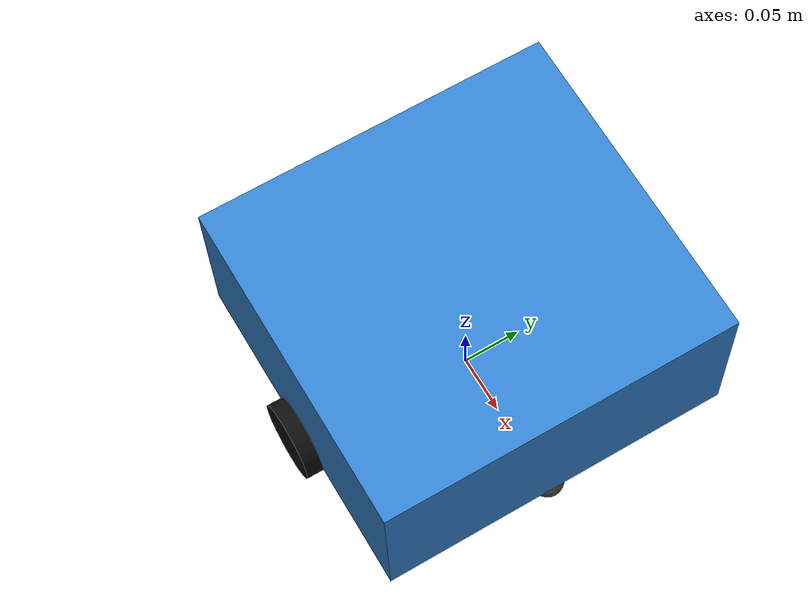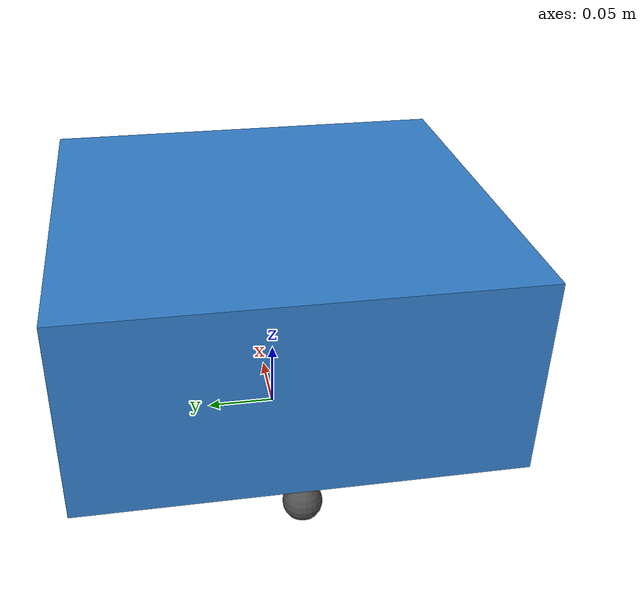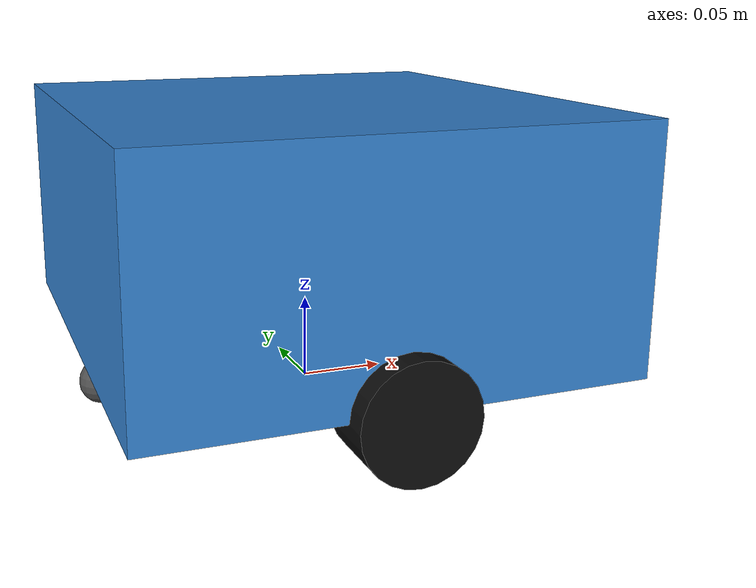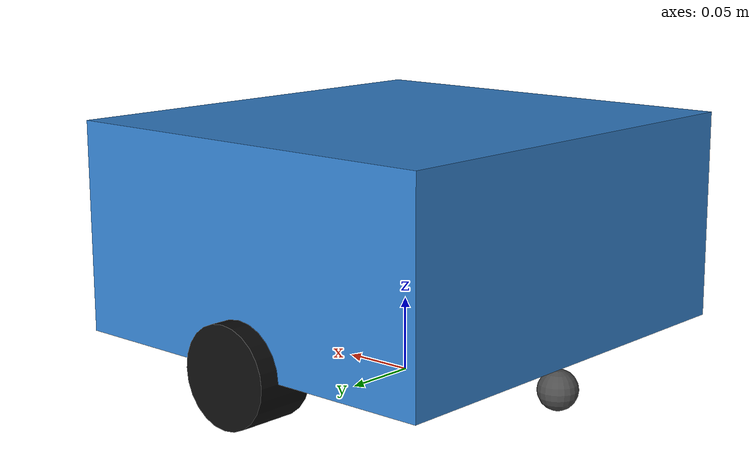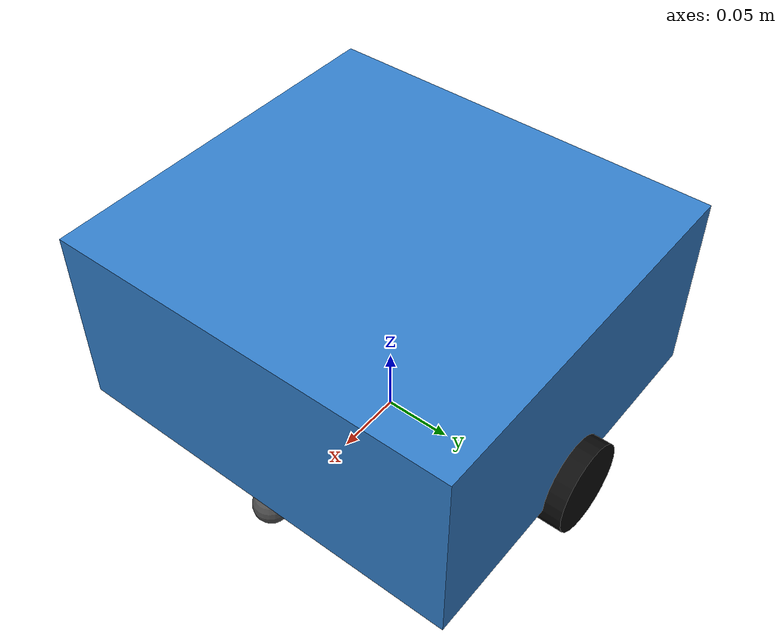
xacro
<?xml version="1.0"?>
<robot name="amr" xmlns:xacro="http://www.ros.org/wiki/xacro">

  <!-- base_footprint at floor level (navigation root). -->
  <link name="base_footprint"/>

  <joint name="base_footprint_to_base_link" type="fixed">
    <parent link="base_footprint"/>
    <child link="base_link"/>
    <origin xyz="0 0 0.103000" rpy="0 0 0"/>
  </joint>

  <link name="base_link">
    <visual>
      <geometry><box size="0.280000 0.300000 0.140000"/></geometry>
      <material name="chassis_color"><color rgba="0.2 0.5 0.8 1"/></material>
    </visual>
    <collision>
      <geometry><box size="0.280000 0.300000 0.140000"/></geometry>
    </collision>
    <inertial>
      <mass value="2.940000"/>
      <inertia ixx="0.026852" iyy="0.024010" izz="0.041258"
               ixy="0" ixz="0" iyz="0"/>
    </inertial>
  </link>

  <!-- Wheels -->
  <link name="left_wheel">
    <visual>
      <geometry><cylinder radius="0.033000" length="0.040000"/></geometry>
      <material name="wheel_color"><color rgba="0.05 0.05 0.05 1"/></material>
      <origin rpy="1.5708 0 0"/>
    </visual>
    <collision>
      <geometry><cylinder radius="0.033000" length="0.040000"/></geometry>
      <origin rpy="1.5708 0 0"/>
    </collision>
    <inertial>
      <mass value="0.034212"/>
      <inertia ixx="0.000014" iyy="0.000014" izz="0.000019"
               ixy="0" ixz="0" iyz="0"/>
    </inertial>
  </link>
  <joint name="left_wheel_joint" type="continuous">
    <parent link="base_link"/>
    <child link="left_wheel"/>
    <origin xyz="0 0.143500 -0.070000" rpy="0 0 0"/>
    <axis xyz="0 1 0"/>
  </joint>

  <link name="right_wheel">
    <visual>
      <geometry><cylinder radius="0.033000" length="0.040000"/></geometry>
      <material name="wheel_color"><color rgba="0.05 0.05 0.05 1"/></material>
      <origin rpy="1.5708 0 0"/>
    </visual>
    <collision>
      <geometry><cylinder radius="0.033000" length="0.040000"/></geometry>
      <origin rpy="1.5708 0 0"/>
    </collision>
    <inertial>
      <mass value="0.034212"/>
      <inertia ixx="0.000014" iyy="0.000014" izz="0.000019"
               ixy="0" ixz="0" iyz="0"/>
    </inertial>
  </link>
  <joint name="right_wheel_joint" type="continuous">
    <parent link="base_link"/>
    <child link="right_wheel"/>
    <origin xyz="0 -0.143500 -0.070000" rpy="0 0 0"/>
    <axis xyz="0 1 0"/>
  </joint>

  <!-- Passive caster at the back -->
  <link name="caster_wheel">
    <visual>
      <geometry><sphere radius="0.013200"/></geometry>
      <material name="caster_color"><color rgba="0.3 0.3 0.3 1"/></material>
    </visual>
    <collision>
      <geometry><sphere radius="0.013200"/></geometry>
    </collision>
    <inertial>
      <mass value="0.002409"/>
      <inertia ixx="0.000000" iyy="0.000000" izz="0.000000"
               ixy="0" ixz="0" iyz="0"/>
    </inertial>
  </link>
  <joint name="caster_joint" type="fixed">
    <parent link="base_link"/>
    <child link="caster_wheel"/>
    <origin xyz="-0.126800 0 -0.089800" rpy="0 0 0"/>
  </joint>

  <link name="caster_wheel_front">
    <visual>
      <geometry><sphere radius="0.013200"/></geometry>
      <material name="caster_color"><color rgba="0.3 0.3 0.3 1"/></material>
    </visual>
    <collision>
      <geometry><sphere radius="0.013200"/></geometry>
    </collision>
    <inertial>
      <mass value="0.002409"/>
      <inertia ixx="0.000000" iyy="0.000000" izz="0.000000"
               ixy="0" ixz="0" iyz="0"/>
    </inertial>
  </link>
  <joint name="caster_front_joint" type="fixed">
    <parent link="base_link"/>
    <child link="caster_wheel_front"/>
    <origin xyz="0.126800 0 -0.089800" rpy="0 0 0"/>
  </joint>

  <link name="lidar_link">
    <inertial>
      <mass value="0.05"/>
      <inertia ixx="1e-5" iyy="1e-5" izz="1e-5" ixy="0" ixz="0" iyz="0"/>
    </inertial>
  </link>
  <joint name="lidar_joint" type="fixed">
    <parent link="base_link"/>
    <child link="lidar_link"/>
    <origin xyz="0 0 0.100000" rpy="0 0 0"/>
  </joint>

  <!-- IMU at chassis center -->
  <link name="imu_link">
    <inertial>
      <mass value="0.01"/>
      <inertia ixx="1e-6" iyy="1e-6" izz="1e-6" ixy="0" ixz="0" iyz="0"/>
    </inertial>
  </link>
  <joint name="imu_joint" type="fixed">
    <parent link="base_link"/>
    <child link="imu_link"/>
    <origin xyz="0 0 0" rpy="0 0 0"/>
  </joint>

  <!-- Gazebo materials + plugins -->
  <gazebo reference="base_link"><material>Gazebo/Blue</material></gazebo>
  <gazebo reference="left_wheel"><material>Gazebo/Black</material></gazebo>
  <gazebo reference="right_wheel"><material>Gazebo/Black</material></gazebo>
  <gazebo reference="caster_wheel"><material>Gazebo/Grey</material></gazebo>

  <gazebo>
    <plugin filename="gz-sim-diff-drive-system" name="gz::sim::systems::DiffDrive">
      <left_joint>left_wheel_joint</left_joint>
      <right_joint>right_wheel_joint</right_joint>
      <wheel_separation>0.287000</wheel_separation>
      <wheel_radius>0.033000</wheel_radius>
      <odom_publish_frequency>30</odom_publish_frequency>
      <topic>cmd_vel</topic>
      <odom_topic>odom</odom_topic>
      <tf_topic>tf</tf_topic>
      <frame_id>odom</frame_id>
      <child_frame_id>base_footprint</child_frame_id>
    </plugin>
    <plugin filename="gz-sim-joint-state-publisher-system" name="gz::sim::systems::JointStatePublisher">
      <topic>joint_states</topic>
    </plugin>
  </gazebo>

  <gazebo reference="lidar_link">
    <sensor name="lidar" type="gpu_lidar">
      <update_rate>10</update_rate>
      <topic>scan</topic>
      <gz_frame_id>lidar_link</gz_frame_id>
      <ignition_frame_id>lidar_link</ignition_frame_id>
      <ray>
        <scan>
          <horizontal>
            <samples>360</samples>
            <resolution>1</resolution>
            <min_angle>-3.14159</min_angle>
            <max_angle>3.14159</max_angle>
          </horizontal>
          <vertical>
            <samples>1</samples>
            <resolution>0.01</resolution>
            <min_angle>0</min_angle>
            <max_angle>0</max_angle>
          </vertical>
        </scan>
        <range>
          <min>0.08</min>
          <max>1.5</max>
          <resolution>0.01</resolution>
        </range>
      </ray>
      <always_on>1</always_on>
      <visualize>true</visualize>
    </sensor>
  </gazebo>

  <gazebo reference="imu_link">
    <sensor name="imu" type="imu">
      <always_on>1</always_on>
      <update_rate>100</update_rate>
      <topic>imu</topic>
      <gz_frame_id>imu_link</gz_frame_id>
      <ignition_frame_id>imu_link</ignition_frame_id>
    </sensor>
  </gazebo>

</robot>
